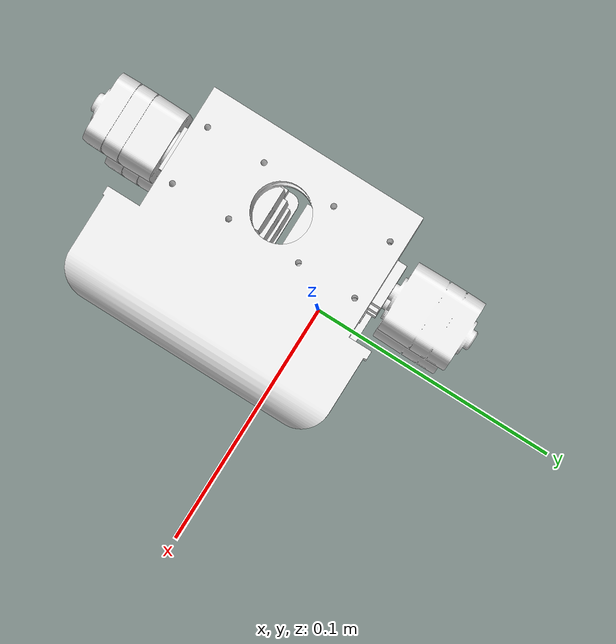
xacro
<?xml version="1.0"?>
<robot name="walker" xmlns:xacro="http://www.ros.org/wiki/xacro">
  <xacro:property name="PI" value="3.141592"/>

  <xacro:macro name="create_joint" params="name parent child x:=0 y:=0 z:=0 axis angle_min:=-30 angle_max:=30">
    <joint name="${name}" type="revolute">
      <parent link="${parent}" />
      <child link="${child}"/>
      <origin xyz="${x/1000} ${y/1000} ${z/1000}" rpy="0 0 0"/>
      <axis xyz="${axis}"/>
      <limit
        effort="40.0" velocity="1.0"
        lower="${angle_min*PI/180}"
        upper="${angle_max*PI/180}"/>
    </joint>
  </xacro:macro>

  <xacro:macro name="create_fixed_joint" params="name parent child x:=0 y:=0 z:=0">
    <joint name="${name}" type="fixed">
      <parent link="${parent}" />
      <child link="${child}"/>
      <origin xyz="${x/1000} ${y/1000} ${z/1000}" rpy="0 0 0"/>
    </joint>
  </xacro:macro>

  <xacro:macro name="create_mesh" params="name x:=0 y:=0 z:=0 yaw:=0">
    <!-- the offsets are used when "re-using" the left leg meshes for the right leg. It's somewhat confusing. -->
    <visual>
      <geometry>
        <mesh scale="0.001 0.001 0.001" filename="package://walker_description/meshes/${name}.stl"/>
      </geometry>
      <material name="gray"/>
      <origin xyz="${x/1000} ${y/1000} ${z/1000}" rpy="0 0 ${yaw*PI/180}"/>
    </visual>
  </xacro:macro>
  <material name="gray">
   <color rgba="0.90 0.90 0.90 1.00"/>
  </material>

  <!-- fix the robot to the world -->

<!-- LEFT FOOT -->

  <link name="lfoot_center"/>
  <!-- center of the left foot's sole. -->

  <xacro:create_fixed_joint name="lfoot_center_lfoot_joint" parent="lfoot_center" child="lfoot"/>

  <link name="lfoot">
    <xacro:create_mesh name="lfoot"/>
  </link>

  <xacro:create_fixed_joint name="lfoot_lA_joint" parent="lfoot" child="lA" x="-15" z="4"/>

<!-- LEFT LEG -->

  <link name="lA">
    <xacro:create_mesh name="lA"/>
  </link>

  <xacro:create_joint name="l_ankle_roll" parent="lA" child="lB" x="19" z="38" axis="1 0 0" angle_min="-23" angle_max="23"/>

  <link name="lB">
    <xacro:create_mesh name="lB"/>
  </link>

  <xacro:create_joint name="l_ankle_pitch" parent="lB" child="lC" x="-19.72" y="19.54" axis="0 1 0" angle_min="-60" angle_max="60"/>

  <link name="lC">
    <xacro:create_mesh name="lC"/>
  </link>

  <xacro:create_joint name="l_knee" parent="lC" child="lD" z="61" axis="0 1 0" angle_min="-90" angle_max="0"/>

  <link name="lD">
    <xacro:create_mesh name="lD"/>
  </link>

  <xacro:create_joint name="l_hip_roll" parent="lD" child="lE" x="19" y="-19" z="58" axis="1 0 0" angle_min="-23" angle_max="23"/>

  <link name="lE">
    <xacro:create_mesh name="lB"/>
    <!-- lB and lE are the same -->
  </link>

  <xacro:create_joint name="l_hip_pitch" parent="lE" child="lF" x="-19.72" y="19.54" axis="0 1 0" angle_min="-60" angle_max="60"/>

  <link name="lF">
    <xacro:create_mesh name="lF"/>
  </link>

<!-- WAIST -->

  <xacro:create_fixed_joint name="lF_waist_joint" parent="lF" child="waist" y="-19" z="28"/>

  <link name="waist">
    <xacro:create_mesh name="waist"/>
  </link>

  <xacro:create_fixed_joint name="waist_pelvis_joint" parent="waist" child="pelvis" y="-23.5"/>

  <link name="pelvis"/>
  <!-- pelvis is the "center" of the robot. -->

  <xacro:create_fixed_joint name="waist_rF_joint" parent="waist" child="rF" y="-47"/>

<!-- RIGHT LEG -->

  <link name="rF">
    <xacro:create_mesh name="lF" y="-19" z="-28" yaw="180"/>
  </link>

  <xacro:create_joint name="r_hip_pitch" parent="rF" child="rE" y="-19" z="-28" axis="0 1 0" angle_min="-60" angle_max="60"/>

  <link name="rE">
    <xacro:create_mesh name="lB" x="-19.72" y="19.54" yaw="180"/>
    <!-- re-using the meshes from the right leg. It's a bit confusing to set the origin parameters, and I've done it through trial and error lol -->
  </link>

  <xacro:create_joint name="r_hip_roll" parent="rE" child="rD" x="19.72" y="19.54" axis="1 0 0" angle_min="-23" angle_max="23"/>

  <link name="rD">
    <xacro:create_mesh name="lD" x="-19" y="-19" z="-58" yaw="180"/>
  </link>

  <xacro:create_joint name="r_knee" parent="rD" child="rC" x="-19" y="-19" z="-58" axis="0 1 0" angle_min="0" angle_max="90"/>

  <link name="rC">
    <xacro:create_mesh name="lC" z="-61" yaw="180"/>
  </link>

  <xacro:create_joint name="r_ankle_pitch" parent="rC" child="rB" z="-61" axis="0 1 0" angle_min="-60" angle_max="60"/>

  <link name="rB">
    <xacro:create_mesh name="lB" x="-19.72" y="19.54" yaw="180"/>
  </link>

  <xacro:create_joint name="r_ankle_roll" parent="rB" child="rA" x="19.72" y="19.54" axis="1 0 0"  angle_min="-23" angle_max="23"/>

  <link name="rA">
    <xacro:create_mesh name="lA" x="-19" z="-38" yaw="180"/>
  </link>

<!-- RIGHT FOOT -->

  <xacro:create_fixed_joint name="rA_rfoot_joint" parent="rA" child="rfoot" x="-19" z="-38"/>

  <link name="rfoot">
    <xacro:create_mesh name="lfoot" x="15" z="-4"/>
  </link>

  <xacro:create_fixed_joint name="rfoot_rfoot_center_joint" parent="rfoot" child="rfoot_center" x="15" z="-4"/>

  <link name="rfoot_center"/>

</robot>
